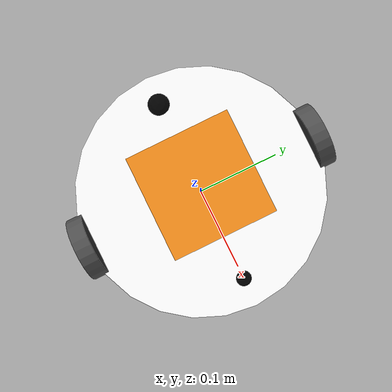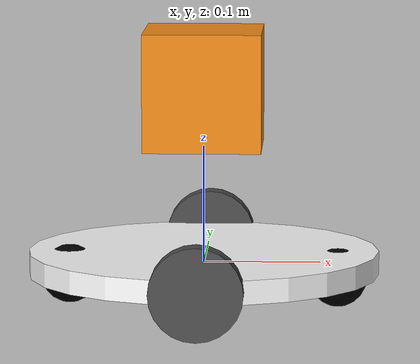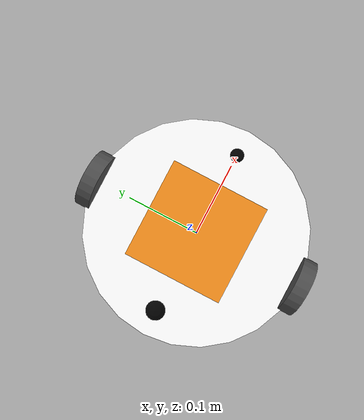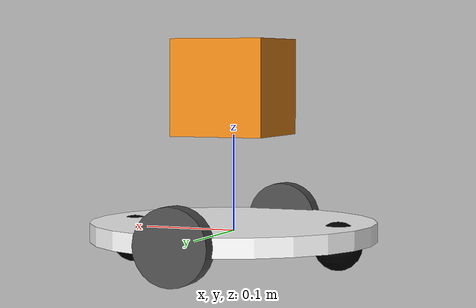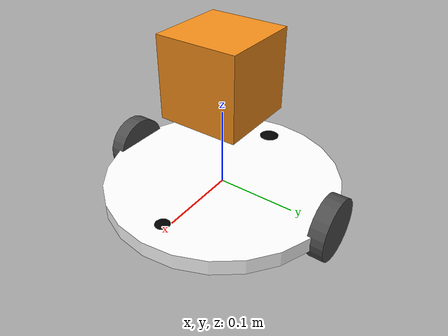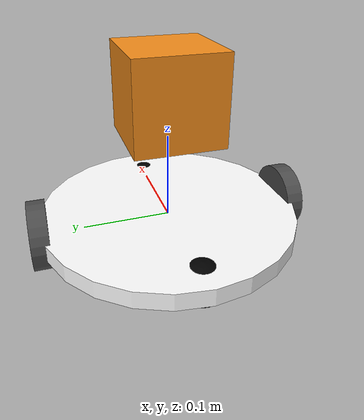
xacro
<?xml version="1.0"?>

<robot name="diff_robot" xmlns:xacro="http://ros.org/wiki/xacro">
  <xacro:include filename="$(find robot_description_pkg)/urdf/diff_robot_macro.xacro" />

  <xacro:property name="LIDAR" value="True"/>
  <xacro:property name="DEPTH" value="False"/>

  <!--Actual body/chassis of the robot-->
	<link name="base_link">
		<inertial>
				<inertia ixx="1.0" ixy="0.0" ixz="0.0" iyy="1.0" iyz="0.0" izz="1.0"/>
			<mass value="${base_mass}" />
			<origin xyz="0 0 0" />
			<cylinder_inertia  m="${base_mass}" r="${base_radius}" h="${base_height}" />
		</inertial>
		<visual>
			<origin xyz="0 0 0" rpy="0 0 0" />
			<geometry>
				<cylinder length="${base_height}" radius="${base_radius}" />
			</geometry>
			<material name="White" />
		</visual>
		<collision>
			<origin xyz="0 0 0" rpy="0 0 0 " />
			<geometry>
				<cylinder length="${base_height}" radius="${base_radius}" />
			</geometry>
		</collision>
	</link>

	<link name="sensor_link">
    <visual>
      <origin xyz="0 0 0.05" rpy="0 0 0"/>
      <geometry>
        <box size="0.1 0.1 0.1"/>
      </geometry>
      <material name="orange"/>
    </visual>
  </link>

	<joint name="sensor_joint" type="fixed">
		<parent link="base_link" />
		<child link="sensor_link" />
		<origin xyz="0.0 0.0 0.1" rpy="0 0 0"/>
	</joint>

	<xacro:caster_joint
		name="caster_front_link"
		parent="base_link"
		child="caster_front_link">
		<origin xyz="0.115 0.0 0.007" rpy="${-M_PI/2} 0 0"/>
	</xacro:caster_joint>

	<xacro:caster_link
		name="caster_front_link">
			<origin xyz="0 0.02 0" rpy="${M_PI/2} 0 0" />
	</xacro:caster_link>

	<xacro:caster_joint
		name="caster_back_joint"
		parent="base_link"
		child="caster_back_link">
		<origin xyz="-0.135 0.0 0.009" rpy="${-M_PI/2} 0 0"/>
	</xacro:caster_joint>

	<xacro:caster_link
		name="caster_back_link">
			<origin xyz="0.02 0.02 0 " rpy="${M_PI/2} 0 0" />
	</xacro:caster_link>

	<xacro:wheel fb="front" lr="right" parent="base_link" translateX="0" translateY="-0.5" flipY="1"/>
	<xacro:wheel fb="front" lr="left" parent="base_link" translateX="0" translateY="0.5" flipY="1"/>

  <!-- Differential drive controller  -->
  <gazebo>
    <plugin name="differential_drive_controller" filename="libgazebo_ros_diff_drive.so">
      <legacyMode>true</legacyMode>
      <rosDebugLevel>Debug</rosDebugLevel>
      <publishWheelTF>false</publishWheelTF>
      <robotNamespace>/</robotNamespace>
      <publishTf>1</publishTf>
      <publishWheelJointState>false</publishWheelJointState>
      <alwaysOn>true</alwaysOn>
      <updateRate>100.0</updateRate>
      <leftJoint>front_left_wheel_joint</leftJoint>
      <rightJoint>front_right_wheel_joint</rightJoint>
      <wheelSeparation>${2*base_radius}</wheelSeparation>
      <wheelDiameter>${2*wheel_radius}</wheelDiameter>
      <broadcastTF>1</broadcastTF>
      <wheelTorque>30</wheelTorque>
      <wheelAcceleration>1.8</wheelAcceleration>
      <commandTopic>cmd_vel</commandTopic>
      <odometryFrame>odom</odometryFrame>
      <odometryTopic>odom</odometryTopic>
      <robotBaseFrame>base_link</robotBaseFrame>
    </plugin>
  </gazebo>

  <xacro:if value="${LIDAR}" >

    <gazebo reference="base_link">
        <sensor type="ray" name="laser">
        <pose>0 0 0.1 0 0 0</pose>
        <visualize>true</visualize>
        <update_rate>40</update_rate>
        <ray>
          <scan>
            <horizontal>
              <samples>720</samples>
              <resolution>1</resolution>
              <min_angle>-1.57</min_angle>
              <max_angle>1.57</max_angle>
            </horizontal>
          </scan>
          <range>
            <min>0.2</min>
            <max>30.0</max>
            <resolution>0.01</resolution>
          </range>
          <noise>
            <type>gaussian</type>
            <mean>0.0</mean>
            <stddev>0.01</stddev>
          </noise>
        </ray>
        <plugin name="gazebo_ros_head_hokuyo_controller" filename="libgazebo_ros_laser.so">
          <topicName>/laser/scan</topicName>
          <frameName>base_link</frameName>
        </plugin>
      </sensor>

    </gazebo>

	</xacro:if>

  <gazebo>
		<plugin name="libwheels_vel" filename="libwheels_vel.so">
		</plugin>
  </gazebo>

   <xacro:if value="${DEPTH}" >

    <gazebo reference="sensor_link">
      <sensor type="depth" name="$depth_camera">
          <always_on>true</always_on>
          <update_rate>30.0</update_rate>
          <camera>
            <horizontal_fov>2</horizontal_fov>
            <image>
              <format>BGR8</format>
              <width>640</width>
              <height>480</height>
            </image>
            <clip>
              <near>0.01</near>
              <far>100</far>
            </clip>
          </camera>
          <plugin name="depth_camera_plugin" filename="libgazebo_ros_openni_kinect.so">
            <alwaysOn>true</alwaysOn>
            <baseline>0.11</baseline>
            <updateRate>30.0</updateRate>
            <cameraName>depth_camera</cameraName>
            <imageTopicName>depth_camera/image_raw</imageTopicName>
            <cameraInfoTopicName>depth_camera/camera_info</cameraInfoTopicName>
            <depthImageTopicName>depth/disparity</depthImageTopicName>
            <depthImageCameraInfoTopicName>depth/camera_info</depthImageCameraInfoTopicName>
            <pointCloudTopicName>depth/points</pointCloudTopicName>
            <frameName>sensor_link_2</frameName>
            <pointCloudCutoff>0.5</pointCloudCutoff>
            <distortionK1>0.0</distortionK1>
            <distortionK2>0.0</distortionK2>
            <distortionK3>0.0</distortionK3>
            <distortionT1>0.0</distortionT1>
            <distortionT2>0.0</distortionT2>
          </plugin>
        </sensor>

    </gazebo>
	</xacro:if>

</robot>

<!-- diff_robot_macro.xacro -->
<robot name="diff_robot" xmlns:xacro="http://www.ros.org/wiki/xacro">

  <!--All units in m-kg-s-radians unit system -->
  <xacro:property name="M_PI" value="3.1415926535897931" />
  <xacro:property name="M_PI_2" value="1.570796327" />
  <xacro:property name="DEG_TO_RAD" value="0.017453293" />

	<!--Material Definition-->
	<material name="Black">
	  <color rgba="0.0 0.0 0.0 1.0"/>
	</material>

  <material name="Red">
  	<color rgba="0.8 0.0 0.0 1.0"/>
  </material>

  <material name="White">
    <color rgba="1.0 1.0 1.0 1.0"/>
  </material>

  <material name="Blue">
    <color rgba="0.0 0.0 0.8 1.0"/>
  </material>

  <!-- Base properties -->
	<xacro:property name="base_height" value="0.02" />
  <xacro:property name="base_radius" value="0.15" />
  <xacro:property name="base_mass" value="5" />

  <!-- caster wheel proprieties  -->
  <xacro:property name="caster_height" value="0.04" />
  <xacro:property name="caster_radius" value="0.025" />
  <xacro:property name="caster_mass" value="0.5" /> <!-- in kg-->

  <!-- Wheels -->
  <xacro:property name="wheel_radius" value="0.039" />
  <xacro:property name="wheel_height" value="0.02" />
  <xacro:property name="wheel_mass" value="2.5" /> <!-- in kg-->

  <xacro:property name="base_x_origin_to_wheel_origin" value="0.25" />
  <xacro:property name="base_y_origin_to_wheel_origin" value="0.3" />
  <xacro:property name="base_z_origin_to_wheel_origin" value="0.0" />

  <xacro:macro name="cylinder_inertia" params="m r h">
    <inertia  ixx="${m*(3*r*r+h*h)/12}" ixy = "0" ixz = "0"
              iyy="${m*(3*r*r+h*h)/12}" iyz = "0"
              izz="${m*r*r/2}" />
  </xacro:macro>

	<xacro:macro name="caster_joint" params="name parent child *origin">
		<joint name="${name}" type="fixed" >
			<parent link="${parent}" />
			<child link="${child}" />
	    <xacro:insert_block name="origin" />
		</joint>
	</xacro:macro>

	<xacro:macro name="caster_link" params="name *origin">
		<link name="${name}">
			<visual>
	    	<xacro:insert_block name="origin" />
				<geometry>
					<sphere radius="${caster_radius}" />
				</geometry>
				<material name="Black" />
			</visual>
			<collision>
				<geometry>
					<sphere radius="${caster_radius}" />
				</geometry>
				<origin xyz="0 0.02 0" rpy="${M_PI/2} 0 0" />
			</collision>
			<inertial>
				<mass value="${caster_mass}" />
				<origin xyz="0 0 0" />
					<inertia  ixx="0.001" ixy="0.0" ixz="0.0"
						  			iyy="0.001" iyz="0.0"
 										izz="0.001" />
			</inertial>
		</link>
	</xacro:macro>

  <xacro:macro name="wheel" params="fb lr parent translateX translateY flipY"> <!--fb : front, back ; lr: left, right -->
    <link name="${fb}_${lr}_wheel">
      <visual>
        <origin xyz="0 0 0" rpy="${flipY*M_PI/2} 0  0 " />
        <geometry>
          <cylinder length="${wheel_height}" radius="${wheel_radius}" />
        </geometry>
        <material name="DarkGray" />
      </visual>
      <collision>
        <origin xyz="0 0 0" rpy="${flipY*M_PI/2} 0 0 " />
        <geometry>
          <cylinder length="${wheel_height}" radius="${wheel_radius}" />
        </geometry>
      </collision>
      <inertial>
        <mass value="${wheel_mass}" />
        <origin xyz="0 0 0" />
				<inertia ixx="0.001" ixy="0.0" ixz="0.0"
               iyy="0.001" iyz="0.0"
               izz="0.001" />
      </inertial>
    </link>

    <gazebo reference="${fb}_${lr}_wheel">
      <mu1 value="1.0"/>
      <mu2 value="1.0"/>
      <kp  value="10000000.0" />
      <kd  value="1.0" />
      <fdir1 value="1 0 0"/>
      <material>Gazebo/Grey</material>
      <turnGravityOff>false</turnGravityOff>
    </gazebo>

    <joint name="${fb}_${lr}_wheel_joint" type="continuous">
      <parent link="${parent}"/>
      <child link="${fb}_${lr}_wheel"/>
      <origin xyz="${translateX * base_x_origin_to_wheel_origin} ${translateY * base_y_origin_to_wheel_origin} ${base_z_origin_to_wheel_origin}" rpy="0 0 0" />
      <axis xyz="0 1 0" rpy="0 0 0" />
      <limit effort="100" velocity="100"/>
      <joint_properties damping="0.0" friction="0.0"/>
    </joint>

    <!-- Transmission is important to link the joints and the controller -->
    <transmission name="${fb}_${lr}_wheel_joint_trans">
      <type>transmission_interface/SimpleTransmission</type>
      <joint name="${fb}_${lr}_wheel_joint" />
      <actuator name="${fb}_${lr}_wheel_joint_motor">
        <hardwareInterface>EffortJointInterface</hardwareInterface>
        <mechanicalReduction>1</mechanicalReduction>
      </actuator>
    </transmission>
  </xacro:macro>
</robot>
